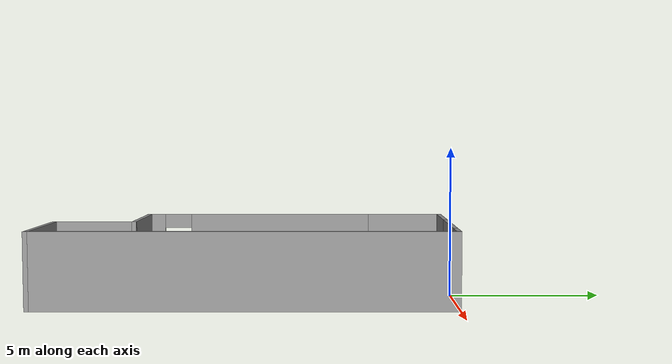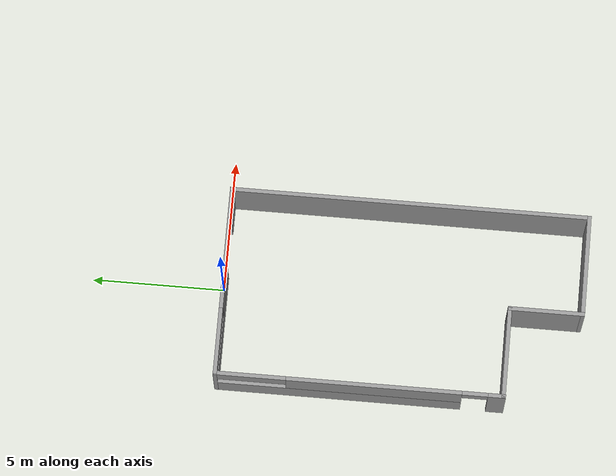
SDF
<?xml version='1.0'?>
<sdf version='1.6'>
  <model name='CLF'>
    <pose frame=''>-0.213 -6.779 0 0 -0 0</pose>
    <link name='Wall_16'>
      <pose frame=''>-3.547 1.3505 0 0 0 -1.5708</pose>
      <visual name='Wall_16_Visual_0'>
        <pose frame=''>-5.37406 0 1.25 0 -0 0</pose>
        <geometry>
          <box>
            <size>0.138871 0.15 2.5</size>
          </box>
        </geometry>
        <material>
          <script>
            <uri>file://media/materials/scripts/gazebo.material</uri>
            <name>Gazebo/Grey</name>
          </script>
          <ambient>1 1 1 1</ambient>
        </material>
      </visual>
      <collision name='Wall_16_Collision_0'>
        <geometry>
          <box>
            <size>0.138871 0.15 2.5</size>
          </box>
        </geometry>
        <pose frame=''>-5.37406 0 1.25 0 -0 0</pose>
      </collision>
      <visual name='Wall_16_Visual_1'>
        <pose frame=''>5.11137 0 1.25 0 -0 0</pose>
        <geometry>
          <box>
            <size>0.664265 0.15 2.5</size>
          </box>
        </geometry>
        <material>
          <script>
            <uri>file://media/materials/scripts/gazebo.material</uri>
            <name>Gazebo/Grey</name>
          </script>
          <ambient>1 1 1 1</ambient>
        </material>
      </visual>
      <collision name='Wall_16_Collision_1'>
        <geometry>
          <box>
            <size>0.664265 0.15 2.5</size>
          </box>
        </geometry>
        <pose frame=''>5.11137 0 1.25 0 -0 0</pose>
      </collision>
      <visual name='Wall_16_Visual_2'>
        <pose frame=''>-0.742697 0 0.6 0 -0 0</pose>
        <geometry>
          <box>
            <size>9.12387 0.15 1.2</size>
          </box>
        </geometry>
        <material>
          <script>
            <uri>file://media/materials/scripts/gazebo.material</uri>
            <name>Gazebo/Grey</name>
          </script>
          <ambient>1 1 1 1</ambient>
        </material>
      </visual>
      <collision name='Wall_16_Collision_2'>
        <geometry>
          <box>
            <size>9.12387 0.15 1.2</size>
          </box>
        </geometry>
        <pose frame=''>-0.742697 0 0.6 0 -0 0</pose>
      </collision>
      <visual name='Wall_16_Visual_3'>
        <pose frame=''>0.542303 0 1.85 0 -0 0</pose>
        <geometry>
          <box>
            <size>6.55387 0.15 1.3</size>
          </box>
        </geometry>
        <material>
          <script>
            <uri>file://media/materials/scripts/gazebo.material</uri>
            <name>Gazebo/Grey</name>
          </script>
          <ambient>1 1 1 1</ambient>
        </material>
      </visual>
      <collision name='Wall_16_Collision_3'>
        <geometry>
          <box>
            <size>6.55387 0.15 1.3</size>
          </box>
        </geometry>
        <pose frame=''>0.542303 0 1.85 0 -0 0</pose>
      </collision>
      <visual name='Wall_16_Visual_4'>
        <pose frame=''>-4.01963 0 2.15 0 -0 0</pose>
        <geometry>
          <box>
            <size>2.57 0.15 0.7</size>
          </box>
        </geometry>
        <material>
          <script>
            <uri>file://media/materials/scripts/gazebo.material</uri>
            <name>Gazebo/Grey</name>
          </script>
          <ambient>1 1 1 1</ambient>
        </material>
      </visual>
      <collision name='Wall_16_Collision_4'>
        <geometry>
          <box>
            <size>2.57 0.15 0.7</size>
          </box>
        </geometry>
        <pose frame=''>-4.01963 0 2.15 0 -0 0</pose>
      </collision>
      <visual name='Wall_16_Visual_5'>
        <pose frame=''>4.29924 0 2.25 0 -0 0</pose>
        <geometry>
          <box>
            <size>0.96 0.15 0.5</size>
          </box>
        </geometry>
        <material>
          <script>
            <uri>file://media/materials/scripts/gazebo.material</uri>
            <name>Gazebo/Grey</name>
          </script>
          <ambient>1 1 1 1</ambient>
        </material>
      </visual>
      <collision name='Wall_16_Collision_5'>
        <geometry>
          <box>
            <size>0.96 0.15 0.5</size>
          </box>
        </geometry>
        <pose frame=''>4.29924 0 2.25 0 -0 0</pose>
      </collision>
    </link>
    <link name='Wall_18'>
      <pose frame=''>0 6.719 0 0 -0 0</pose>
      <visual name='Wall_18_Visual_0'>
        <pose frame=''>-3.60318 0 1.25 0 -0 0</pose>
        <geometry>
          <box>
            <size>0.037641 0.15 2.5</size>
          </box>
        </geometry>
        <material>
          <script>
            <uri>file://media/materials/scripts/gazebo.material</uri>
            <name>Gazebo/Grey</name>
          </script>
          <ambient>1 1 1 1</ambient>
        </material>
      </visual>
      <collision name='Wall_18_Collision_0'>
        <geometry>
          <box>
            <size>0.037641 0.15 2.5</size>
          </box>
        </geometry>
        <pose frame=''>-3.60318 0 1.25 0 -0 0</pose>
      </collision>
      <visual name='Wall_18_Visual_1'>
        <pose frame=''>3.03507 0 1.25 0 -0 0</pose>
        <geometry>
          <box>
            <size>1.17385 0.15 2.5</size>
          </box>
        </geometry>
        <material>
          <script>
            <uri>file://media/materials/scripts/gazebo.material</uri>
            <name>Gazebo/Grey</name>
          </script>
          <ambient>1 1 1 1</ambient>
        </material>
      </visual>
      <collision name='Wall_18_Collision_1'>
        <geometry>
          <box>
            <size>1.17385 0.15 2.5</size>
          </box>
        </geometry>
        <pose frame=''>3.03507 0 1.25 0 -0 0</pose>
      </collision>
      <visual name='Wall_18_Visual_2'>
        <pose frame=''>-1.44311 0 0.6 0 -0 0</pose>
        <geometry>
          <box>
            <size>4.28251 0.15 1.2</size>
          </box>
        </geometry>
        <material>
          <script>
            <uri>file://media/materials/scripts/gazebo.material</uri>
            <name>Gazebo/Grey</name>
          </script>
          <ambient>1 1 1 1</ambient>
        </material>
      </visual>
      <collision name='Wall_18_Collision_2'>
        <geometry>
          <box>
            <size>4.28251 0.15 1.2</size>
          </box>
        </geometry>
        <pose frame=''>-1.44311 0 0.6 0 -0 0</pose>
      </collision>
      <visual name='Wall_18_Visual_3'>
        <pose frame=''>-0.183105 0 1.85 0 -0 0</pose>
        <geometry>
          <box>
            <size>1.76251 0.15 1.3</size>
          </box>
        </geometry>
        <material>
          <script>
            <uri>file://media/materials/scripts/gazebo.material</uri>
            <name>Gazebo/Grey</name>
          </script>
          <ambient>1 1 1 1</ambient>
        </material>
      </visual>
      <collision name='Wall_18_Collision_3'>
        <geometry>
          <box>
            <size>1.76251 0.15 1.3</size>
          </box>
        </geometry>
        <pose frame=''>-0.183105 0 1.85 0 -0 0</pose>
      </collision>
      <visual name='Wall_18_Visual_4'>
        <pose frame=''>-2.32436 0 2.15 0 -0 0</pose>
        <geometry>
          <box>
            <size>2.52 0.15 0.7</size>
          </box>
        </geometry>
        <material>
          <script>
            <uri>file://media/materials/scripts/gazebo.material</uri>
            <name>Gazebo/Grey</name>
          </script>
          <ambient>1 1 1 1</ambient>
        </material>
      </visual>
      <collision name='Wall_18_Collision_4'>
        <geometry>
          <box>
            <size>2.52 0.15 0.7</size>
          </box>
        </geometry>
        <pose frame=''>-2.32436 0 2.15 0 -0 0</pose>
      </collision>
      <visual name='Wall_18_Visual_5'>
        <pose frame=''>1.57315 0 2.25 0 -0 0</pose>
        <geometry>
          <box>
            <size>1.75 0.15 0.5</size>
          </box>
        </geometry>
        <material>
          <script>
            <uri>file://media/materials/scripts/gazebo.material</uri>
            <name>Gazebo/Grey</name>
          </script>
          <ambient>1 1 1 1</ambient>
        </material>
      </visual>
      <collision name='Wall_18_Collision_5'>
        <geometry>
          <box>
            <size>1.75 0.15 0.5</size>
          </box>
        </geometry>
        <pose frame=''>1.57315 0 2.25 0 -0 0</pose>
      </collision>
    </link>
    <link name='Wall_20'>
      <collision name='Wall_20_Collision'>
        <geometry>
          <box>
            <size>13.588 0.15 2.5</size>
          </box>
        </geometry>
        <pose frame=''>0 0 1.25 0 -0 0</pose>
      </collision>
      <visual name='Wall_20_Visual'>
        <pose frame=''>0 0 1.25 0 -0 0</pose>
        <geometry>
          <box>
            <size>13.588 0.15 2.5</size>
          </box>
        </geometry>
        <material>
          <script>
            <uri>file://media/materials/scripts/gazebo.material</uri>
            <name>Gazebo/Grey</name>
          </script>
          <ambient>1 1 1 1</ambient>
        </material>
      </visual>
      <pose frame=''>3.547 0 0 0 0 -1.5708</pose>
    </link>
    <link name='Wall_22'>
      <collision name='Wall_22_Collision'>
        <geometry>
          <box>
            <size>3.877 0.15 2.5</size>
          </box>
        </geometry>
        <pose frame=''>0 0 1.25 0 -0 0</pose>
      </collision>
      <visual name='Wall_22_Visual'>
        <pose frame=''>0 0 1.25 0 -0 0</pose>
        <geometry>
          <box>
            <size>3.877 0.15 2.5</size>
          </box>
        </geometry>
        <material>
          <script>
            <uri>file://media/materials/scripts/gazebo.material</uri>
            <name>Gazebo/Grey</name>
          </script>
          <ambient>1 1 1 1</ambient>
        </material>
      </visual>
      <pose frame=''>1.6835 -6.719 0 0 -0 3.14159</pose>
    </link>
    <link name='Wall_24'>
      <collision name='Wall_24_Collision'>
        <geometry>
          <box>
            <size>2.864 0.15 2.5</size>
          </box>
        </geometry>
        <pose frame=''>0 0 1.25 0 -0 0</pose>
      </collision>
      <visual name='Wall_24_Visual'>
        <pose frame=''>0 0 1.25 0 -0 0</pose>
        <geometry>
          <box>
            <size>2.864 0.15 2.5</size>
          </box>
        </geometry>
        <material>
          <script>
            <uri>file://media/materials/scripts/gazebo.material</uri>
            <name>Gazebo/Grey</name>
          </script>
          <ambient>1 1 1 1</ambient>
        </material>
      </visual>
      <pose frame=''>-0.18 -5.362 0 0 -0 1.5708</pose>
    </link>
    <link name='Wall_26'>
      <collision name='Wall_26_Collision'>
        <geometry>
          <box>
            <size>3.5 0.15 2.5</size>
          </box>
        </geometry>
        <pose frame=''>0 0 1.25 0 -0 0</pose>
      </collision>
      <visual name='Wall_26_Visual'>
        <pose frame=''>0 0 1.25 0 -0 0</pose>
        <geometry>
          <box>
            <size>3.5 0.15 2.5</size>
          </box>
        </geometry>
        <material>
          <script>
            <uri>file://media/materials/scripts/gazebo.material</uri>
            <name>Gazebo/Grey</name>
          </script>
          <ambient>1 1 1 1</ambient>
        </material>
      </visual>
      <pose frame=''>-1.855 -4.005 0 0 -0 3.14159</pose>
    </link>
    <static>1</static>
  </model>
</sdf>
